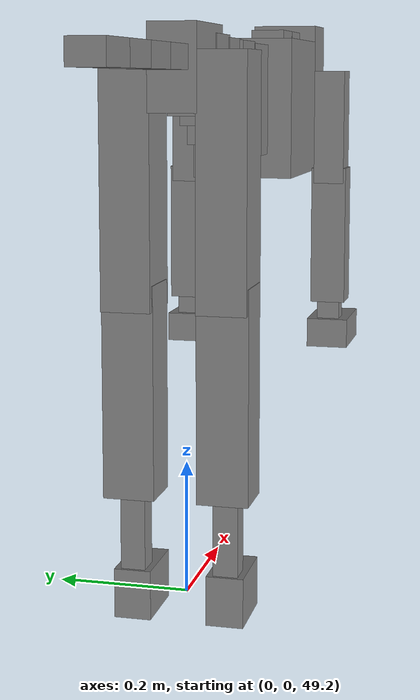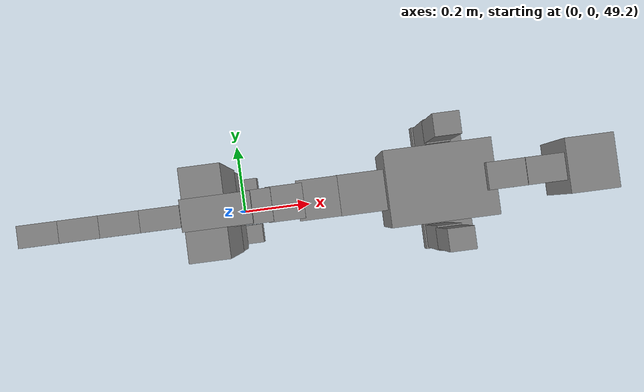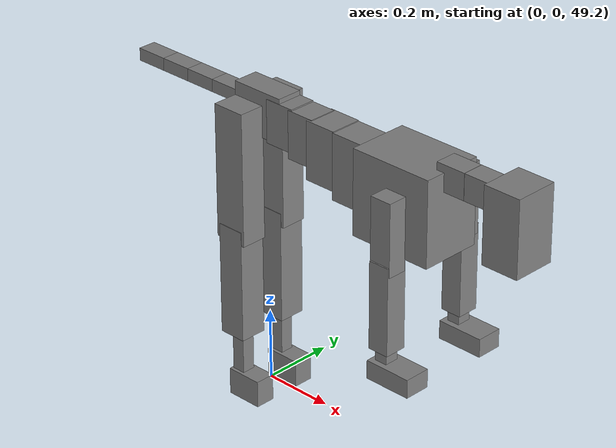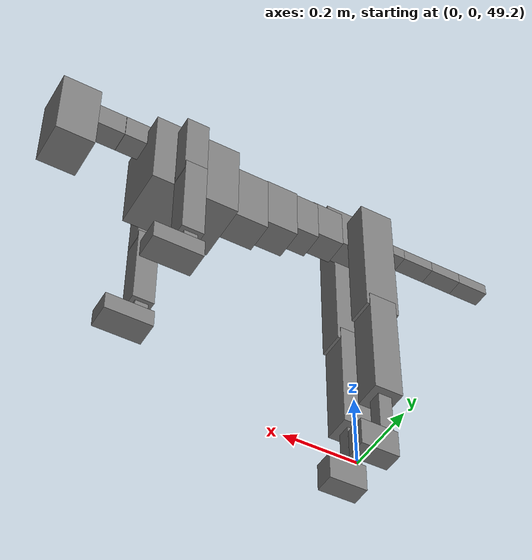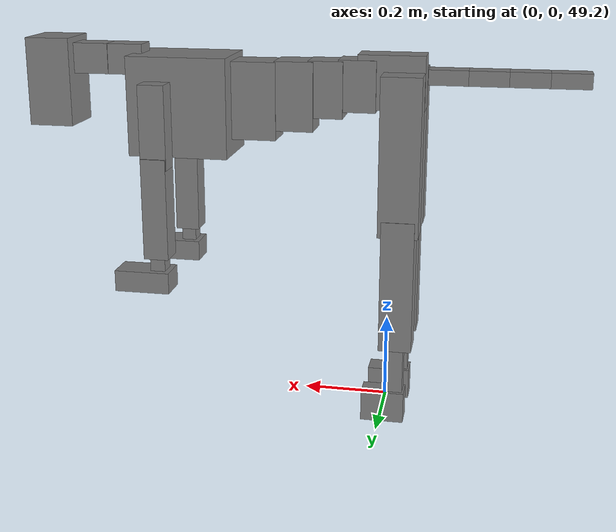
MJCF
<mujoco model="dog">

    <default>
        <joint armature="0.02" stiffness="1" damping="0.2" limited="true"/>
        <geom condim="3" friction="1 0.05 0.05" margin="0.01"/>
        <motor ctrllimited="true" ctrlrange="-1.0 1.0" forcelimited="true" gear="50"/>
    </default>

    <compiler inertiafromgeom="true" angle="radian"/>

    <option timestep="0.016" iterations="50" tolerance="1e-10" solver="Newton" jacobian="dense" cone="pyramidal"/>

    <size nconmax="20000" njmax="60000" nstack="5000000"/>
    <visual>
        <map force="0.1" zfar="30"/>
        <rgba haze="0.15 0.25 0.35 1"/>
        <quality shadowsize="2048"/>
        <global offwidth="800" offheight="800"/>
    </visual>

    <asset>
        <texture type="skybox" builtin="gradient" rgb1="0.3 0.5 0.7" rgb2="0 0 0" width="512" height="512"/>
        <texture name="texplane" type="2d" builtin="checker" rgb1=".2 .3 .4" rgb2=".1 0.15 0.2" width="512" height="512"
                 mark="cross" markrgb=".8 .8 .8"/>
        <texture name="texgeom" type="cube" builtin="flat" mark="cross" width="127" height="1278" rgb1="0.8 0.6 0.4"
                 rgb2="0.8 0.6 0.4" markrgb="1 1 1" random="0.01"/>

        <material name="matplane" reflectance="0.3" texture="texplane" texrepeat="1 1" texuniform="true"/>
        <material name="matgeom" texture="texgeom" texuniform="true" rgba="0.8 0.6 .4 1"/>
    </asset>

    <worldbody>
        <geom name="floor" pos="0 0 0" size="0 0 .25" type="plane" material="matplane" condim="3"/>

        <light directional="false" diffuse=".2 .2 .2" specular="0 0 0" pos="0 0 5" dir="0 0 -1" castshadow="false"/>
        <light mode="targetbodycom" target="torso" directional="false" diffuse=".8 .8 .8" specular="0.3 0.3 0.3"
               pos="0 0 4.0" dir="0 0 -1"/>

        <body name="root" pos="0 0 50">
            <freejoint name="root_1"/>
            <geom type="box" pos="0 0 -0.02" size="0.0774  0.0358  0.063" density="2030"/>

            <body name="spine1" pos="0.054 0 0">
                <joint name="spine1_y" axis="0 1 0" range="0 0.7" limited="true"/>
                <geom type="box" pos="0.02375 0 -0.03" size="0.04375  0.0375  0.05985" density="2030"/>

                <body name="spine2" pos="0.0612 0 0">
                    <joint name="spine2_y" axis="0 1 0" range="-0.15 0.15" limited="true"/>
                    <geom type="box" pos="0.03555  0  -0.04" size="0.04055  0.039  0.06615" density="2030"/>

                    <body name="spine3" pos="0.0730 0 0">
                        <joint name="spine3_y" axis="0 1 0" range="-0.15 0.15" limited="true"/>
                        <geom type="box" pos="0.03555  0  -0.057" size="0.04555  0.0445  0.081" density="2030"/>

                        <body name="spine4" pos="0.0780 0 0">
                            <joint name="spine4_y" axis="0 1 0" range="-0.15 0.15" limited="true"/>
                            <geom type="box" pos="0.05265  0  -0.07" size="0.05265  0.045  0.09135" density="2030"/>

                            <body name="torso" pos="0.1082 0 0">
                                <joint name="torso_y" axis="0 1 0" range="-0.15 0.15" limited="true"/>
                                <geom type="box" pos="0.11925  0  -0.085" size="0.11925  0.085  0.11745"
                                      density="2030"/>

                                <body name="neck1" pos="0.2160  0   0.0180">
                                    <joint name="neck1_y" axis="0 1 0" range="-1.2  -1" limited="true"/>
                                    <geom type="box" pos="0.0423  0  0" size="0.0423  0.03  0.036" density="2325"/>

                                    <body name="neck2" pos="0.0853  0  0">
                                        <joint name="neck2_y" axis="0 1 0" range="0.1  0" limited="true"/>
                                        <geom type="box" pos="0.0423  0  0" size="0.0423  0.03  0.036" density="2325"/>

                                        <body name="head" pos="0.0853  0  0">
                                            <joint name="head_y" axis="0 1 0" range="-0.3  -0.2" limited="true"/>
                                            <geom type="box" pos="0.0531  0  -0.055" size="0.0531  0.06  0.1044"
                                                  density="4030"/>

                                        </body>
                                    </body>
                                </body>

                                <body name="front_shoulder" pos="0.156  0   -0.0480">
                                    <joint name="front_shoulder_y" axis="0 1 0" range="-1 1.5" limited="true"/>
                                    <geom type="box" pos="0 0.13 -0.0720" size="0.0308  0.0263  0.0987" density="1158"/>
                                    <geom type="box" pos="0 -0.13 -0.0720" size="0.0308  0.0263  0.0987"
                                          density="1158"/>

                                    <body name="front_elbow" pos="0  0  -0.1440">
                                        <joint name="front_elbow_y" axis="0 1 0" range="-2 0" limited="true"/>
                                        <geom type="box" pos="0 0.13 -0.1201" size="0.0295  0.0302  0.1201"
                                              density="1081"/>
                                        <geom type="box" pos="0 -0.13 -0.1201" size="0.0295  0.0302  0.1201"
                                              density="1081"/>

                                        <body name="front_wrist" pos="0  0  -0.2401">
                                            <joint name="front_wrist_y" axis="0 1 0" range="-0.2 0" limited="true"/>
                                            <geom type="box" pos="0 0.13 -0.0233" size="0.0177  0.0197  0.0365"
                                                  density="1664"/>
                                            <geom type="box" pos="0 -0.13 -0.0233" size="0.0177  0.0197  0.0365"
                                                  density="1664"/>

                                            <body name="front_finger_end" pos="0  0  -0.0466">
                                                <joint name="front_finger_y" axis="0 1 0" range="-0.4 1"
                                                       limited="true"/>
                                                <geom type="box" pos="0.0359  0.13  -0.0103"
                                                      size="0.0658  0.0359  0.0253" density="1515"/>
                                                <geom type="box" pos="0.0359  -0.13  -0.0103"
                                                      size="0.0658  0.0359  0.0253" density="1515"/>

                                            </body>

                                        </body>
                                    </body>
                                </body>

                            </body>
                        </body>
                    </body>
                </body>
            </body>

            <body name="back_hip" pos="-0.03 0 -0.018">
                <joint name="back_hip_y" axis="0 1 0" range="-1.5 0.3" limited="true"/>
                <geom type="box" pos="0 0.07 -0.1624" size="0.0469  0.0368  0.1852" density="1154"/>
                <geom type="box" pos="0 -0.07 -0.1624" size="0.0469  0.0368  0.1852" density="1154"/>

                <body name="back_knee" pos="0  0  -0.3249">
                    <joint name="back_knee_y" axis="0 1 0" range="0 2.8" limited="true"/>
                    <geom type="box" pos="0 0.07 -0.1423" size="0.0387  0.0382  0.1579" density="1227"/>
                    <geom type="box" pos="0 -0.07 -0.1423" size="0.0387  0.0382  0.1579" density="1227"/>

                    <body name="back_ankle" pos="0  0  -0.2847">
                        <joint name="back_ankle_y" axis="0 1 0" range="-2.2 0" limited="true"/>
                        <geom type="box" pos="0 0.07 -0.0714" size="0.0185  0.0185  0.0826" density="1284"/>
                        <geom type="box" pos="0 -0.07 -0.0714" size="0.0185  0.0185  0.0826" density="1284"/>

                        <body name="back_toe_end" pos="0  0  -0.1428">
                            <joint name="back_toe_y" axis="0 1 0" range="-0.4 1" limited="true"/>
                            <geom type="box" pos="0.0278  0.07  -0.0223" size="0.0510  0.0278  0.0373" density="1515"/>
                            <geom type="box" pos="0.0278  -0.07  -0.0223" size="0.0510  0.0278  0.0373" density="1515"/>

                        </body>
                    </body>
                </body>
            </body>

            <body name="tail1" pos="-0.074 0 -0.006">
                <joint name="tail1_y" axis="0 1 0" range="-0.2 0.2" limited="true"/>
                <geom type="box" pos="-0.0536  0  0" size="0.045  0.025  0.0175" density="1587"/>

                <body name="tail2" pos="-0.09 0 0">
                    <joint name="tail2_y" axis="0 1 0" range="-0.2 0.2" limited="true"/>
                    <geom type="box" pos="-0.0536  0  0" size="0.045  0.025  0.0175" density="1587"/>

                    <body name="tail3" pos="-0.09 0 0">
                        <joint name="tail3_y" axis="0 1 0" range="-0.2 0.2" limited="true"/>
                        <geom type="box" pos="-0.0536  0  0" size="0.045  0.025  0.0175" density="1587"/>

                        <body name="tail4" pos="-0.09 0 0">
                            <joint name="tail4_y" axis="0 1 0" range="-0.2 0.2" limited="true"/>
                            <geom type="box" pos="-0.0536  0  0" size="0.045  0.025  0.0175" density="1587"/>

                        </body>
                    </body>
                </body>
            </body>
        </body>
    </worldbody>

    <actuator>
        <motor joint="spine1_y" forcerange="-150 150     "/>
        <motor joint="spine2_y" forcerange="-150 150     "/>
        <motor joint="spine3_y" forcerange="-150 150     "/>
        <motor joint="spine4_y" forcerange="-150 150     "/>
        <motor joint="torso_y" forcerange="-150 150     "/>
        <motor joint="neck1_y" forcerange="-100 100       "/>
        <motor joint="neck2_y" forcerange="-100 100       "/>
        <motor joint="head_y" forcerange="-150 150       "/>
        <motor joint="front_shoulder_y" forcerange="-119.19 156.16"/>
        <motor joint="front_elbow_y" forcerange="-150.56 168.74"/>
        <motor joint="front_wrist_y" forcerange="-53.13 104.64"/>
        <motor joint="front_finger_y" forcerange="-76.06 75.34"/>
        <motor joint="back_hip_y" forcerange="-313.74 376.98"/>
        <motor joint="back_knee_y" forcerange="-362.94 392.52"/>
        <motor joint="back_angle_y" forcerange="-108.84 87.37"/>
        <motor joint="back_toe_y" forcerange="-120.17 22.56"/>
        <motor joint="tail1_y" forcerange="-50 50     "/>
        <motor joint="tail2_y" forcerange="-50 50     "/>
        <motor joint="tail3_y" forcerange="-50 50     "/>
        <motor joint="tail4_y" forcerange="-50 50     "/>
    </actuator>
</mujoco>
